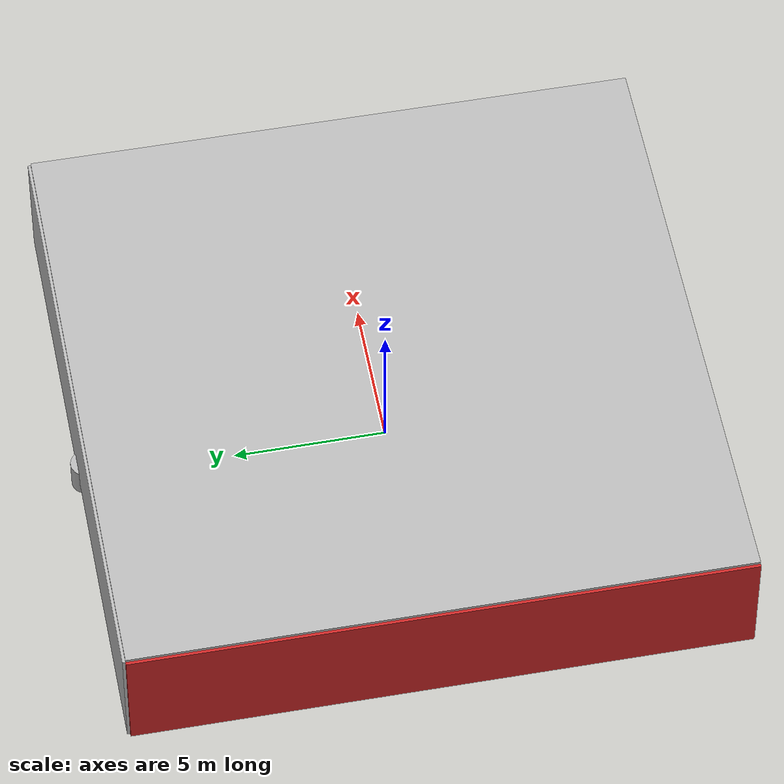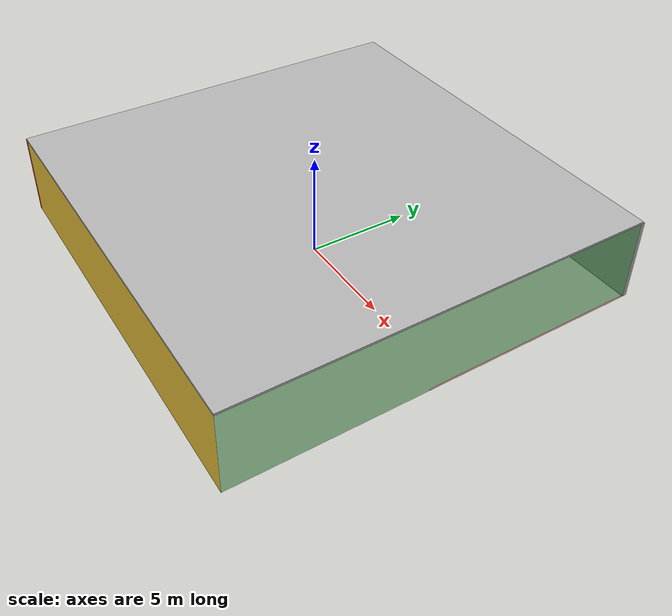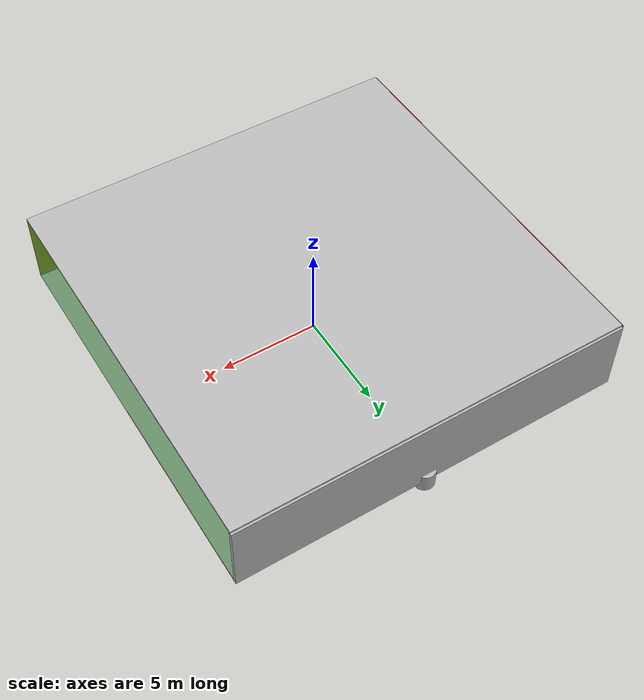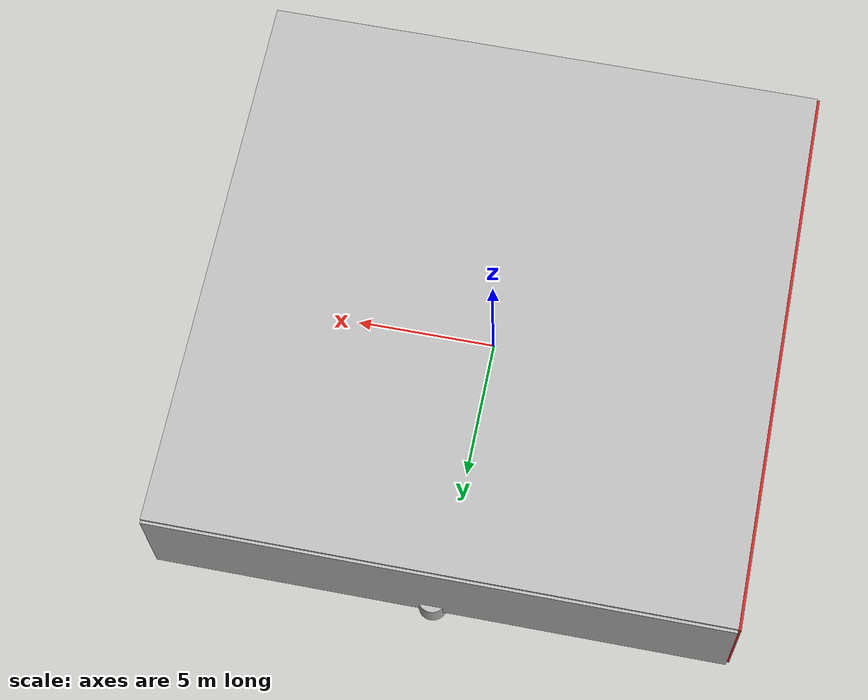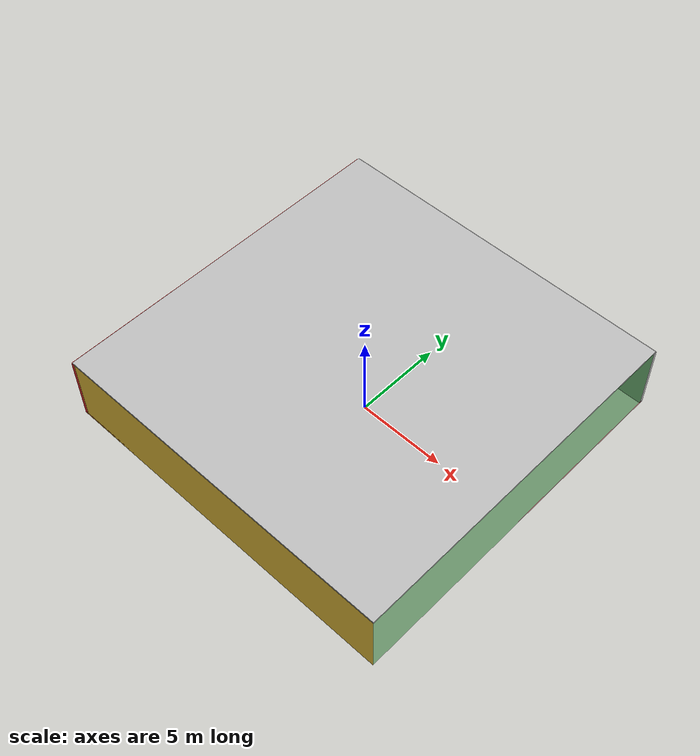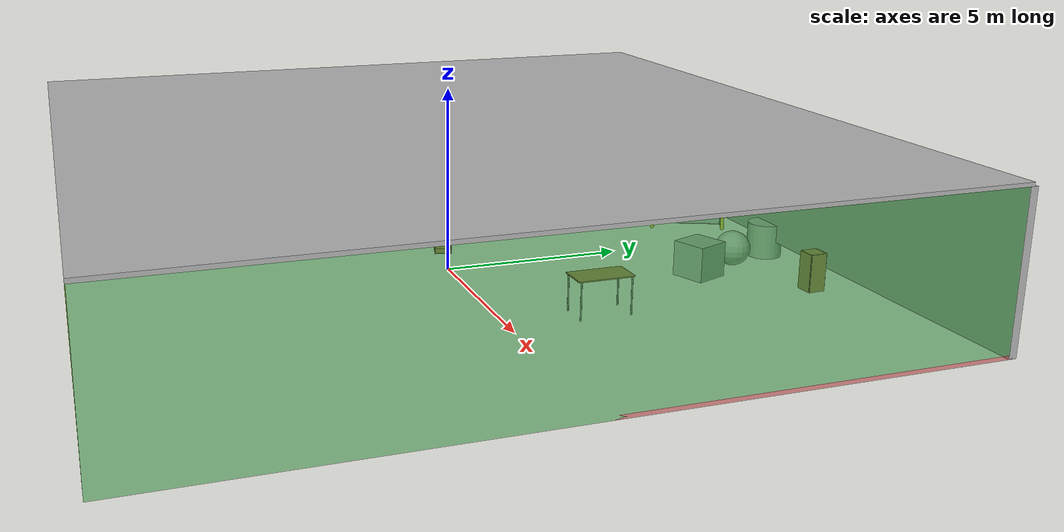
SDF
<sdf version="1.4">
 <world name="default">
  <physics type="ode">
   <max_step_size>0.001</max_step_size>
   <real_time_factor>1</real_time_factor>
   <real_time_update_rate>1000</real_time_update_rate>
   <gravity>0 0 -9.8</gravity>
  </physics>
  <scene><ambient>0.4 0.4 0.4 1</ambient><background>0.7 0.7 0.7 1</background><shadows>1</shadows></scene>
  <model name="Surrounding">
   <static>1</static>
   <link name="Ceiling">
    <collision name="Ceiling_Collision"><geometry><box><size>20 20 0.1</size></box></geometry></collision>
    <visual name="Ceiling_Visual">
     <geometry><box><size>20 20 0.1</size></box></geometry>
     <material>
      <script><uri>file://media/materials/scripts/gazebo.material</uri><name>Gazebo/CloudySky</name></script>
     </material>
    </visual>
    <pose>0 0 4.05 0 0 0</pose>
   </link>
   <link name="Wall_South">
    <collision name="Wall_South_Collision">
     <geometry><box><size>20 0 4</size></box></geometry>
     <pose>0 0 2 0 -0 0</pose>
    </collision>
    <visual name="Wall_South_Visual">
     <pose>0 0 2 0 -0 0</pose>
     <geometry><box><size>20 0 4</size></box></geometry>
     <material>
      <script><uri>file://media/materials/scripts/gazebo.material</uri><name>Gazebo/Gold</name></script>
     </material>
    </visual>
    <velocity_decay><linear>0</linear><angular>0</angular></velocity_decay>
    <pose>0 -10 0 0 -0 0</pose>
   </link>
   <link name="Wall_East">
    <collision name="Wall_21_Collision">
     <geometry><box><size>20 0 4</size></box></geometry>
     <pose>0 0 2 0 -0 0</pose>
    </collision>
    <visual name="Wall_21_Visual">
     <pose>0 0 2 0 -0 0</pose>
     <geometry><box><size>20 0 4</size></box></geometry>
     <material>
      <script><uri>file://media/materials/scripts/gazebo.material</uri><name>Gazebo/GreenTransparent</name></script>
     </material>
    </visual>
    <velocity_decay><linear>0</linear><angular>0</angular></velocity_decay>
    <pose>10 0 0 0 -0 1.5708</pose>
   </link>
   <link name="Wall_North">
    <collision name="Wall_22_Collision">
     <geometry><box><size>20 0.2 4</size></box></geometry>
     <pose>0 0 2 0 -0 0</pose>
    </collision>
    <visual name="Wall_22_Visual">
     <pose>0 0 2 0 -0 0</pose>
     <geometry><box><size>20 0.2 4</size></box></geometry>
     <material>
      <script><uri>file://media/materials/scripts/gazebo.material</uri><name>Gazebo/LightOn</name></script>
     </material>
    </visual>
    <velocity_decay><linear>0</linear><angular>0</angular></velocity_decay>
    <pose>0 10 0 0 -0 0</pose>
   </link>
   <link name="Wall_West">
    <collision name="Wall_23_Collision">
     <geometry><box><size>20 0.2 4</size></box></geometry>
     <pose>0 0 2 0 -0 0</pose>
    </collision>
    <visual name="Wall_23_Visual">
     <pose>0 0 2 0 -0 0</pose>
     <geometry><box><size>20 0.2 4</size></box></geometry>
     <material>
      <script><uri>file://media/materials/scripts/gazebo.material</uri><name>Gazebo/Red</name></script>
     </material>
    </visual>
    <velocity_decay><linear>0</linear><angular>0</angular></velocity_decay>
    <pose>-10 0 0 0 0 -1.5708</pose>
   </link>
   <link name="Ground_link">
    <collision name="collision">
     <pose>0 0 .05 0 -0 0</pose>
     <geometry><box><size>20 20 0.1</size></box></geometry>
    </collision>
    <visual name="visual">
     <pose>0 0 .05 0 -0 0</pose>
     <geometry><box><size>20 20 0.1</size></box></geometry>
     <material>
      <script><uri>file://media/materials/scripts/gazebo.material</uri><name>Gazebo/RedTransparent</name></script>
     </material>
    </visual>
   </link>
   <static>1</static>
  </model>
  <spherical_coordinates>
   <surface_model>EARTH_WGS84</surface_model>
   <latitude_deg>0</latitude_deg>
   <longitude_deg>0</longitude_deg>
   <elevation>0</elevation>
   <heading_deg>0</heading_deg>
  </spherical_coordinates>
  <light name="lightball_0" type="diffuse">
   <diffuse>0.8 0.8 0.8 1</diffuse>
   <specular>0.2 0.2 0.2 1</specular>
   <attenuation>
    <range>100</range>
    <constant>0.7</constant>
    <linear>0.01</linear>
    <quadratic>0.001</quadratic>
   </attenuation>
   <direction>-0.5 0.1 -0.9</direction>
   <pose>1.23234742486 4.76328026633 3.47727355503 0 0 0</pose>
  </light>
  <light name="lightball_1" type="diffuse">
   <diffuse>0.8 0.8 0.8 1</diffuse>
   <specular>0.2 0.2 0.2 1</specular>
   <attenuation>
    <range>100</range>
    <constant>0.7</constant>
    <linear>0.01</linear>
    <quadratic>0.001</quadratic>
   </attenuation>
   <direction>-0.5 0.1 -0.9</direction>
   <pose>3.51811998878 7.34302255709 2.96087486575 0 0 0</pose>
  </light>
  <light name="lightball_2" type="diffuse">
   <diffuse>0.8 0.8 0.8 1</diffuse>
   <specular>0.2 0.2 0.2 1</specular>
   <attenuation>
    <range>100</range>
    <constant>0.7</constant>
    <linear>0.01</linear>
    <quadratic>0.001</quadratic>
   </attenuation>
   <direction>-0.5 0.1 -0.9</direction>
   <pose>2.20638191393 -1.00474005894 2.92473670711 0 0 0</pose>
  </light>
  <light name="lightball_3" type="diffuse">
   <diffuse>0.8 0.8 0.8 1</diffuse>
   <specular>0.2 0.2 0.2 1</specular>
   <attenuation>
    <range>100</range>
    <constant>0.7</constant>
    <linear>0.01</linear>
    <quadratic>0.001</quadratic>
   </attenuation>
   <direction>-0.5 0.1 -0.9</direction>
   <pose>2.68770055927 -0.750640976547 2.4101405312 0 0 0</pose>
  </light>
  <light name="lightball_4" type="diffuse">
   <diffuse>0.8 0.8 0.8 1</diffuse>
   <specular>0.2 0.2 0.2 1</specular>
   <attenuation>
    <range>100</range>
    <constant>0.7</constant>
    <linear>0.01</linear>
    <quadratic>0.001</quadratic>
   </attenuation>
   <direction>-0.5 0.1 -0.9</direction>
   <pose>-8.4191176021 -8.1254964967 0.992352217899 0 0 0</pose>
  </light>
  <light name="lightball_5" type="diffuse">
   <diffuse>0.8 0.8 0.8 1</diffuse>
   <specular>0.2 0.2 0.2 1</specular>
   <attenuation>
    <range>100</range>
    <constant>0.7</constant>
    <linear>0.01</linear>
    <quadratic>0.001</quadratic>
   </attenuation>
   <direction>-0.5 0.1 -0.9</direction>
   <pose>2.64079616675 -4.6247156705 3.24347741632 0 0 0</pose>
  </light>
  <light name="lightball_6" type="diffuse">
   <diffuse>0.8 0.8 0.8 1</diffuse>
   <specular>0.2 0.2 0.2 1</specular>
   <attenuation>
    <range>100</range>
    <constant>0.7</constant>
    <linear>0.01</linear>
    <quadratic>0.001</quadratic>
   </attenuation>
   <direction>-0.5 0.1 -0.9</direction>
   <pose>-7.99126855247 8.48627388839 2.46796658531 0 0 0</pose>
  </light>
  <light name="lightball_7" type="diffuse">
   <diffuse>0.8 0.8 0.8 1</diffuse>
   <specular>0.2 0.2 0.2 1</specular>
   <attenuation>
    <range>100</range>
    <constant>0.7</constant>
    <linear>0.01</linear>
    <quadratic>0.001</quadratic>
   </attenuation>
   <direction>-0.5 0.1 -0.9</direction>
   <pose>3.67141040247 -8.76284666716 1.62819659039 0 0 0</pose>
  </light>
  <include>
   <uri>model://textured_shapes</uri>
   <pose>-6.69274681046 -4.99515324389 0 0 0 1.8917257445</pose>
  </include>
  <include>
   <uri>model://textured_shapes</uri>
   <pose>-7.18082355185 -0.503093943675 0 0 0 2.36216602373</pose>
  </include>
  <include><uri>model://cabinet</uri><pose>-6.99257532328 2.17447321443 0 0 0 1.2574174587</pose></include>
  <include><uri>model://cabinet</uri><pose>-1.54036850091 0.363019930604 0 0 0 2.86909059655</pose></include>
  <include>
   <uri>model://robocup_3Dsim_goal</uri>
   <pose>-1.36010862543 8.13833845707 0 0 0 2.7422475204</pose>
  </include>
  <include>
   <uri>model://textured_shapes</uri>
   <pose>0.79253242068 8.4214852789 0 0 0 0.367371808451</pose>
  </include>
  <include><uri>model://table</uri><pose>4.39704456646 2.48116745936 0 0 0 1.573505447</pose></include>
  <include><uri>model://cabinet</uri><pose>4.55521711791 8.47659733487 0 0 0 0.0366607096035</pose></include>
 </world>
</sdf>

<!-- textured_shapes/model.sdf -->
<sdf version="1.6">
  <model name="textured_shapes">
    <pose>0 0 0.5 0 0 0</pose>
    <link name="box">
      <pose>0 -1.5 0 0 0 0</pose>
      <collision name="collision">
        <geometry>
          <box>
            <size>1 1 1</size>
          </box>
        </geometry>
      </collision>
      <visual name="visual">
        <geometry>
          <box>
            <size>1 1 1</size>
          </box>
        </geometry>
        <material>
          <script>
            <uri>model://../model_source/models/textured_shapes/materials/scripts</uri>
            <uri>model://../model_source/models/textured_shapes/materials/textures</uri>
            <name>TexturedShape/Squares</name>
          </script>
        </material>
      </visual>
    </link>
    <link name="sphere">
      <collision name="collision">
        <geometry>
          <sphere>
            <radius>0.5</radius>
          </sphere>
        </geometry>
      </collision>
      <visual name="visual">
        <geometry>
          <sphere>
            <radius>0.5</radius>
          </sphere>
        </geometry>
        <material>
          <script>
            <uri>model://../model_source/models/textured_shapes/materials/scripts</uri>
            <uri>model://../model_source/models/textured_shapes/materials/textures</uri>
            <name>TexturedShape/Squares</name>
          </script>
        </material>
      </visual>
    </link>
    <link name="cylinder">
      <pose>0 1.5 0 0 0 0</pose>
      <collision name="collision">
        <geometry>
          <cylinder>
            <radius>0.5</radius>
            <length>1</length>
          </cylinder>
        </geometry>
      </collision>
      <visual name="visual">
        <geometry>
          <cylinder>
            <radius>0.5</radius>
            <length>1</length>
          </cylinder>
        </geometry>
        <material>
          <script>
            <uri>model://../model_source/models/textured_shapes/materials/scripts</uri>
            <uri>model://../model_source/models/textured_shapes/materials/textures</uri>
            <name>TexturedShape/Squares</name>
          </script>
        </material>
      </visual>
    </link>
  </model>
</sdf>

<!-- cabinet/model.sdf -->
<sdf version="1.5">
  <model name="cabinet">
    <static>true</static>
    <link name="cabinet_bottom_plate">
      <inertial>
        <pose>0 0 -1 0 0 0</pose>
        <inertia>
          <ixx>2.050000</ixx>
          <ixy>0</ixy>
          <ixz>0</ixz>
          <iyy>2.050000</iyy>
          <iyz>0</iyz>
          <izz>2.050000</izz>
        </inertia>
        <mass>25.000000</mass>
      </inertial>
      <collision name="cabinet_bottom_plate_geom">
        <pose>0 0 0.010000 0 0 0</pose>
        <geometry>
          <box>
            <size>0.450000 0.450000 0.020000</size>
          </box>
        </geometry>
      </collision>
      <visual name="cabinet_bottom_plate_geom_visual">
        <pose>0 0 0.010000 0 0 0</pose>
        <geometry>
          <box>
            <size>0.450000 0.450000 0.020000</size>
          </box>
        </geometry>
        <material>
          <script>
            <uri>model://media/materials/scripts/gazebo.material</uri>
            <name>Gazebo/Wood</name>
          </script>
        </material>
      </visual>
      <collision name="cabinet_bottom_plate_geom_cabinet_back_plate">
        <pose>0.235000 0 0.510000 0 0 0</pose>
        <geometry>
          <box>
            <size>0.020000 0.450000 1.020000</size>
          </box>
        </geometry>
      </collision>
      <visual name="cabinet_bottom_plate_geom_cabinet_back_plate_visual">
        <pose>0.235000 0 0.510000 0 0 0</pose>
        <geometry>
          <box>
            <size>0.020000 0.450000 1.020000</size>
          </box>
        </geometry>
        <material>
          <script>
            <uri>model://media/materials/scripts/gazebo.material</uri>
            <name>Gazebo/Wood</name>
          </script>
        </material>
      </visual>
      <collision name="cabinet_bottom_plate_geom_cabinet_left_plate">
        <pose>0 0.235000 0.510000 0 0 0</pose>
        <geometry>
          <box>
            <size>0.450000 0.020000 1.020000</size>
          </box>
        </geometry>
      </collision>
      <visual name="cabinet_bottom_plate_geom_cabinet_left_plate_visual">
        <pose>0 0.235000 0.510000 0 0 0</pose>
        <geometry>
          <box>
            <size>0.450000 0.020000 1.020000</size>
          </box>
        </geometry>
        <material>
          <script>
            <uri>model://media/materials/scripts/gazebo.material</uri>
            <name>Gazebo/Wood</name>
          </script>
        </material>
      </visual>
      <collision name="cabinet_bottom_plate_geom_cabinet_middle_plate">
        <pose>0 0 0.510000 0 0 0</pose>
        <geometry>
          <box>
            <size>0.450000 0.450000 0.020000</size>
          </box>
        </geometry>
      </collision>
      <visual name="cabinet_bottom_plate_geom_cabinet_middle_plate_visual">
        <pose>0 0 0.510000 0 0 0</pose>
        <geometry>
          <box>
            <size>0.450000 0.450000 0.020000</size>
          </box>
        </geometry>
        <material>
          <script>
            <uri>model://media/materials/scripts/gazebo.material</uri>
            <name>Gazebo/Wood</name>
          </script>
        </material>
      </visual>
      <collision name="cabinet_bottom_plate_geom_cabinet_right_plate">
        <pose>0 -0.235000 0.510000 0 0 0</pose>
        <geometry>
          <box>
            <size>0.450000 0.020000 1.020000</size>
          </box>
        </geometry>
      </collision>
      <visual name="cabinet_bottom_plate_geom_cabinet_right_plate_visual">
        <pose>0 -0.235000 0.510000 0 0 0</pose>
        <geometry>
          <box>
            <size>0.450000 0.020000 1.020000</size>
          </box>
        </geometry>
        <material>
          <script>
            <uri>model://media/materials/scripts/gazebo.material</uri>
            <name>Gazebo/Wood</name>
          </script>
        </material>
      </visual>
      <collision name="cabinet_bottom_plate_geom_cabinet_top_plate">
        <pose>0 0 1.010000 0 0 0</pose>
        <geometry>
          <box>
            <size>0.450000 0.450000 0.020000</size>
          </box>
        </geometry>
      </collision>
      <visual name="cabinet_bottom_plate_geom_cabinet_top_plate_visual">
        <pose>0 0 1.010000 0 0 0</pose>
        <geometry>
          <box>
            <size>0.450000 0.450000 0.020000</size>
          </box>
        </geometry>
        <material>
          <script>
            <uri>model://media/materials/scripts/gazebo.material</uri>
            <name>Gazebo/Wood</name>
          </script>
        </material>
      </visual>
    </link>
  </model>
</sdf>

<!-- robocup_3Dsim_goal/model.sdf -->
<sdf version="1.5">
  <model name="robocup_3d_goal">
    <static>true</static>
    <link name="left_post">
      <pose>0 1.05 0.45 0 0 0</pose>
      <collision name="collision">
        <geometry>
          <cylinder>
            <radius>0.05</radius>
            <length>0.9</length>
          </cylinder>
        </geometry>
      </collision>
      <visual name="visual">
        <geometry>
          <cylinder>
            <radius>0.05</radius>
            <length>0.9</length>
          </cylinder>
        </geometry>
        <material>
          <script>
            <uri>file://media/materials/scripts/gazebo.material</uri>
            <name>Gazebo/ZincYellow</name>
          </script>
        </material>
      </visual>
    </link>
    <link name="left_support_horiz_lower">
      <pose>0.30 1.05 0.01 0 0 0</pose>
      <collision name="collision">
        <geometry>
          <box>
            <size>0.50 0.02 0.02</size>
          </box>
        </geometry>
      </collision>
      <visual name="visual">
        <geometry>
          <box>
            <size>0.50 0.02 0.02</size>
          </box>
        </geometry>
        <material>
          <script>
            <uri>file://media/materials/scripts/gazebo.material</uri>
            <name>Gazebo/White</name>
          </script>
        </material>
      </visual>
    </link>
    <link name="left_support_horiz_upper">
      <pose>0.30 1.05 0.79 0 0 0</pose>
      <collision name="collision">
        <geometry>
          <box>
            <size>0.50 0.02 0.02</size>
          </box>
        </geometry>
      </collision>
      <visual name="visual">
        <geometry>
          <box>
            <size>0.50 0.02 0.02</size>
          </box>
        </geometry>
        <material>
          <script>
            <uri>file://media/materials/scripts/gazebo.material</uri>
            <name>Gazebo/White</name>
          </script>
        </material>
      </visual>
    </link>
    <link name="left_support_vertical">
      <pose>0.56 1.05 0.4 0 1.5708 0</pose>
      <collision name="collision">
        <geometry>
          <box>
            <size>0.80 0.02 0.02</size>
          </box>
        </geometry>
      </collision>
      <visual name="visual">
        <geometry>
          <box>
            <size>0.80 0.02 0.02</size>
          </box>
        </geometry>
        <material>
          <script>
            <uri>file://media/materials/scripts/gazebo.material</uri>
            <name>Gazebo/White</name>
          </script>
        </material>
      </visual>
    </link>
    <link name="right_support_horiz_lower">
      <pose>0.30 -1.05 0.01 0 0 0</pose>
      <collision name="collision">
        <geometry>
          <box>
            <size>0.50 0.02 0.02</size>
          </box>
        </geometry>
      </collision>
      <visual name="visual">
        <geometry>
          <box>
            <size>0.50 0.02 0.02</size>
          </box>
        </geometry>
        <material>
          <script>
            <uri>file://media/materials/scripts/gazebo.material</uri>
            <name>Gazebo/White</name>
          </script>
        </material>
      </visual>
    </link>
    <link name="right_support_horiz_upper">
      <pose>0.30 -1.05 0.79 0 0 0</pose>
      <collision name="collision">
        <geometry>
          <box>
            <size>0.50 0.02 0.02</size>
          </box>
        </geometry>
      </collision>
      <visual name="visual">
        <geometry>
          <box>
            <size>0.50 0.02 0.02</size>
          </box>
        </geometry>
        <material>
          <script>
            <uri>file://media/materials/scripts/gazebo.material</uri>
            <name>Gazebo/White</name>
          </script>
        </material>
      </visual>
    </link>
    <link name="right_support_vertical">
      <pose>0.56 -1.05 0.4 0 1.5708 0</pose>
      <collision name="collision">
        <geometry>
          <box>
            <size>0.80 0.02 0.02</size>
          </box>
        </geometry>
      </collision>
      <visual name="visual">
        <geometry>
          <box>
            <size>0.80 0.02 0.02</size>
          </box>
        </geometry>
        <material>
          <script>
            <uri>file://media/materials/scripts/gazebo.material</uri>
            <name>Gazebo/White</name>
          </script>
        </material>
      </visual>
    </link>
    <link name="center_support_horiz_lower">
      <pose>0.56 0 0.01 0 1.5708 0</pose>
      <collision name="collision">
        <geometry>
          <box>
            <size>0.02 2.08 0.02</size>
          </box>
        </geometry>
      </collision>
      <visual name="visual">
        <geometry>
          <box>
            <size>0.02 2.08 0.02</size>
          </box>
        </geometry>
        <material>
          <script>
            <uri>file://media/materials/scripts/gazebo.material</uri>
            <name>Gazebo/White</name>
          </script>
        </material>
      </visual>
    </link>
    <link name="center_support_horiz_upper">
      <pose>0.56 0 0.79 0 1.5708 0</pose>
      <collision name="collision">
        <geometry>
          <box>
            <size>0.02 2.08 0.02</size>
          </box>
        </geometry>
      </collision>
      <visual name="visual">
        <geometry>
          <box>
            <size>0.02 2.08 0.02</size>
          </box>
        </geometry>
        <material>
          <script>
            <uri>file://media/materials/scripts/gazebo.material</uri>
            <name>Gazebo/White</name>
          </script>
        </material>
      </visual>
    </link>
    <link name="right_post">
      <pose>0 -1.05 0.45 0 0 0</pose>
      <collision name="collision">
        <geometry>
          <cylinder>
            <radius>0.05</radius>
            <length>0.9</length>
          </cylinder>
        </geometry>
      </collision>
      <visual name="visual">
        <geometry>
          <cylinder>
            <radius>0.05</radius>
            <length>0.9</length>
          </cylinder>
        </geometry>
        <material>
          <script>
            <uri>file://media/materials/scripts/gazebo.material</uri>
            <name>Gazebo/ZincYellow</name>
          </script>
        </material>
      </visual>
    </link>
    <link name="crossbar">
      <pose>0 0 0.85 1.57 1.57 0</pose>
      <collision name="collision">
        <geometry>
          <cylinder>
            <radius>0.05</radius>
            <length>2.0</length>
          </cylinder>
        </geometry>
      </collision>
      <visual name="visual">
        <geometry>
          <cylinder>
            <radius>0.05</radius>
            <length>2.0</length>
          </cylinder>
        </geometry>
        <material>
          <script>
            <uri>file://media/materials/scripts/gazebo.material</uri>
            <name>Gazebo/ZincYellow</name>
          </script>
        </material>
      </visual>
    </link>
    <link name="center_net">
      <pose>0.56 0 0.40 0 0 0</pose>
      <collision name="collision">
        <geometry>
          <box>
            <size>0.01 2.1 0.80</size>
          </box>
        </geometry>
      </collision>
      <visual name="visual">
        <geometry>
          <box>
            <size>0.01 2.1 0.80</size>
          </box>
        </geometry>
        <material>
          <script>
            <uri>model://../model_source/models/robocup09_spl_field/materials/scripts/</uri>
            <uri>model://../model_source/models/robocup09_spl_field/materials/textures/</uri>
            <name>RoboCup/Net</name>
          </script>
        </material>
      </visual>
    </link>
    <link name="left_net">
      <pose>0.30 1.05 0.40 0 0 0</pose>
      <collision name="collision">
        <geometry>
          <box>
            <size>0.50 0.01 0.76</size>
          </box>
        </geometry>
      </collision>
      <visual name="visual">
        <geometry>
          <box>
            <size>0.50 0.01 0.76</size>
          </box>
        </geometry>
        <material>
          <script>
            <uri>model://../model_source/models/robocup09_spl_field/materials/scripts/</uri>
            <uri>model://../model_source/models/robocup09_spl_field/materials/textures/</uri>
            <name>RoboCup/Net</name>
          </script>
        </material>
      </visual>
    </link>
    <link name="right_net">
      <pose>0.30 -1.05 0.40 0 0 0</pose>
      <collision name="collision">
        <geometry>
          <box>
            <size>0.50 0.01 0.76</size>
          </box>
        </geometry>
      </collision>
      <visual name="visual">
        <geometry>
          <box>
            <size>0.50 0.01 0.76</size>
          </box>
        </geometry>
        <material>
          <script>
            <uri>model://../model_source/models/robocup09_spl_field/materials/scripts/</uri>
            <uri>model://../model_source/models/robocup09_spl_field/materials/textures/</uri>
            <name>RoboCup/Net</name>
          </script>
        </material>
      </visual>
    </link>
  </model>
</sdf>

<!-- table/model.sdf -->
<sdf version="1.5">
  <model name="table">
    <static>true</static>
    <link name="link">
      <collision name="surface">
        <pose>0 0 1.0 0 0 0</pose>
        <geometry>
          <box>
            <size>1.5 0.8 0.03</size>
          </box>
        </geometry>
        <surface>
          <friction>
            <ode>
              <mu>0.6</mu>
              <mu2>0.6</mu2>
            </ode>
          </friction>
        </surface>
      </collision>
      <visual name="visual1">
        <pose>0 0 1.0 0 0 0</pose>
        <geometry>
          <box>
            <size>1.5 0.8 0.03</size>
          </box>
        </geometry>
        <material>
          <script>
            <uri>model://media/materials/scripts/gazebo.material</uri>
            <name>Gazebo/Wood</name>
          </script>
        </material>
      </visual>
      <collision name="front_left_leg">
        <pose>0.68 0.38 0.5 0 0 0</pose>
        <geometry>
          <cylinder>
            <radius>0.02</radius>
            <length>1.0</length>
          </cylinder>
        </geometry>
      </collision>
      <visual name="front_left_leg">
        <pose>0.68 0.38 0.5 0 0 0</pose>
        <geometry>
          <cylinder>
            <radius>0.02</radius>
            <length>1.0</length>
          </cylinder>
        </geometry>
        <material>
          <script>
            <uri>model://media/materials/scripts/gazebo.material</uri>
            <name>Gazebo/Grey</name>
          </script>
        </material>
      </visual>
      <collision name="front_right_leg">
        <pose>0.68 -0.38 0.5 0 0 0</pose>
        <geometry>
          <cylinder>
            <radius>0.02</radius>
            <length>1.0</length>
          </cylinder>
        </geometry>
      </collision>
      <visual name="front_right_leg">
        <pose>0.68 -0.38 0.5 0 0 0</pose>
        <geometry>
          <cylinder>
            <radius>0.02</radius>
            <length>1.0</length>
          </cylinder>
        </geometry>
        <material>
          <script>
            <uri>model://media/materials/scripts/gazebo.material</uri>
            <name>Gazebo/Grey</name>
          </script>
        </material>
      </visual>
      <collision name="back_right_leg">
        <pose>-0.68 -0.38 0.5 0 0 0</pose>
        <geometry>
          <cylinder>
            <radius>0.02</radius>
            <length>1.0</length>
          </cylinder>
        </geometry>
      </collision>
      <visual name="back_right_leg">
        <pose>-0.68 -0.38 0.5 0 0 0</pose>
        <geometry>
          <cylinder>
            <radius>0.02</radius>
            <length>1.0</length>
          </cylinder>
        </geometry>
        <material>
          <script>
            <uri>model://media/materials/scripts/gazebo.material</uri>
            <name>Gazebo/Grey</name>
          </script>
        </material>
      </visual>
      <collision name="back_left_leg">
        <pose>-0.68 0.38 0.5 0 0 0</pose>
        <geometry>
          <cylinder>
            <radius>0.02</radius>
            <length>1.0</length>
          </cylinder>
        </geometry>
      </collision>
      <visual name="back_left_leg">
        <pose>-0.68 0.38 0.5 0 0 0</pose>
        <geometry>
          <cylinder>
            <radius>0.02</radius>
            <length>1.0</length>
          </cylinder>
        </geometry>
        <material>
          <script>
            <uri>model://media/materials/scripts/gazebo.material</uri>
            <name>Gazebo/Grey</name>
          </script>
        </material>
      </visual>
    </link>
  </model>
</sdf>
